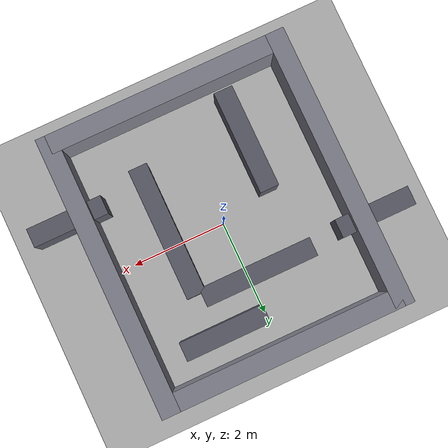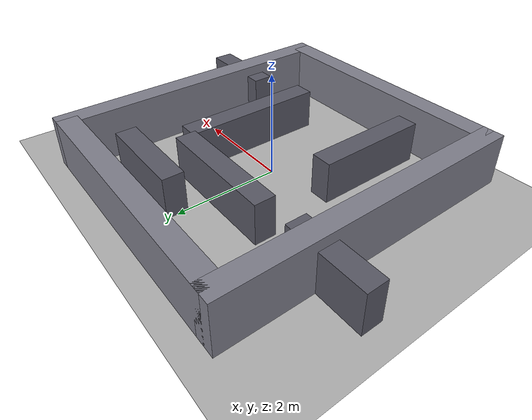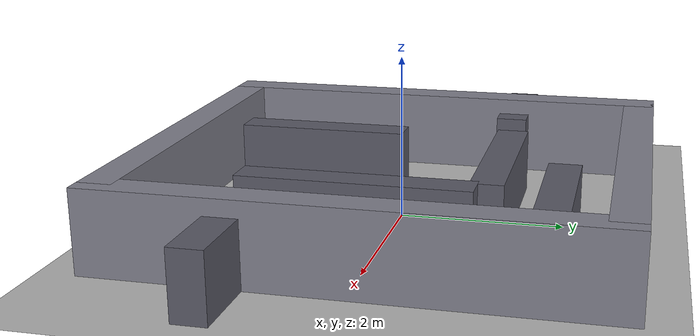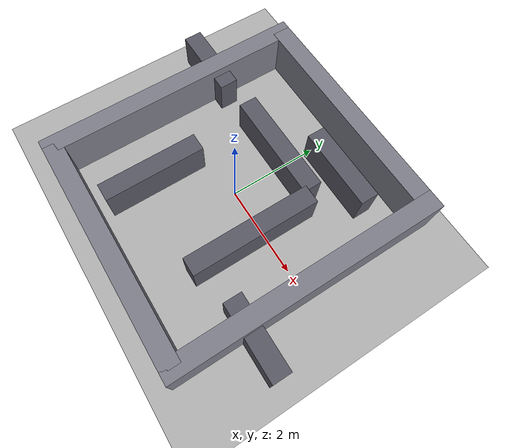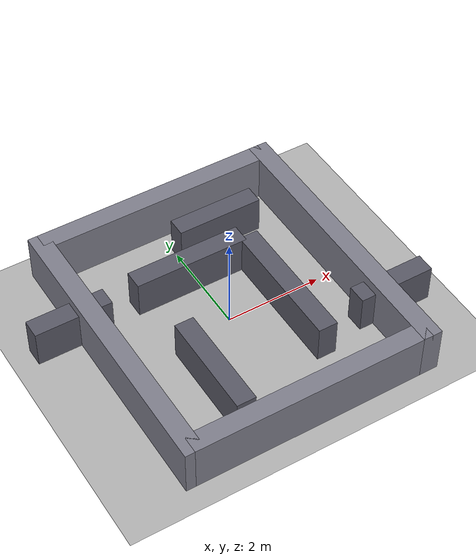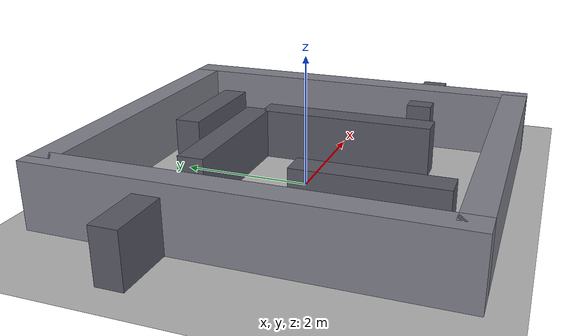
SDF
<?xml version="1.0"?>
<sdf version="1.7">
  <world name="mecanum_ode">
    <gravity>0 0 -9.81</gravity>
    <physics name="ode" type="ode">
      <max_step_size>0.001</max_step_size>
      <real_time_update_rate>1000</real_time_update_rate>
    </physics>

    <!-- Simple directional light (replacement for model://sun) -->
    <light name="sun" type="directional">
      <cast_shadows>true</cast_shadows>
      <pose>0 0 10 0 0 0</pose>
      <diffuse>1 1 1 1</diffuse>
      <specular>0.1 0.1 0.1 1</specular>
      <attenuation>
        <range>100</range>
        <linear>0.01</linear>
        <constant>1.0</constant>
        <quadratic>0.001</quadratic>
      </attenuation>
      <direction>-0.5 0.5 -1</direction>
    </light>

    <!-- Ground plane (replacement for model://ground_plane) -->
    <model name="ground_plane">
      <static>true</static>
      <link name="link">
        <collision name="collision">
          <geometry>
            <plane>
              <normal>0 0 1</normal>
              <size>200 200</size>
            </plane>
          </geometry>
          <surface>
            <contact>
              <collide_bitmask>65535</collide_bitmask>
            </contact>
          </surface>
        </collision>
        <visual name="visual">
          <cast_shadows>false</cast_shadows>
          <geometry>
            <plane>
              <normal>0 0 1</normal>
              <size>200 200</size>
            </plane>
          </geometry>
          <material>
            <ambient>0.7 0.7 0.7 1</ambient>
            <diffuse>0.7 0.7 0.7 1</diffuse>
          </material>
        </visual>
      </link>
    </model>

    <!-- Simple maze-like obstacle layout -->
    <model name="maze_outer_west">
      <static>true</static>
      <pose>-2.5 0.0 0.5 0 0 0</pose>
      <link name="link">
        <collision name="collision">
          <geometry><box><size>0.4 6.0 1.0</size></box></geometry>
        </collision>
        <visual name="visual">
          <geometry><box><size>0.4 6.0 1.0</size></box></geometry>
          <material><ambient>0.5 0.5 0.55 1</ambient><diffuse>0.5 0.5 0.55 1</diffuse></material>
        </visual>
      </link>
    </model>

    <model name="maze_outer_east">
      <static>true</static>
      <pose>2.5 0.0 0.5 0 0 0</pose>
      <link name="link">
        <collision name="collision">
          <geometry><box><size>0.4 6.0 1.0</size></box></geometry>
        </collision>
        <visual name="visual">
          <geometry><box><size>0.4 6.0 1.0</size></box></geometry>
          <material><ambient>0.5 0.5 0.55 1</ambient><diffuse>0.5 0.5 0.55 1</diffuse></material>
        </visual>
      </link>
    </model>

    <model name="maze_outer_south">
      <static>true</static>
      <pose>0.0 -2.8 0.5 0 0 0</pose>
      <link name="link">
        <collision name="collision">
          <geometry><box><size>5.0 0.4 1.0</size></box></geometry>
        </collision>
        <visual name="visual">
          <geometry><box><size>5.0 0.4 1.0</size></box></geometry>
          <material><ambient>0.5 0.5 0.55 1</ambient><diffuse>0.5 0.5 0.55 1</diffuse></material>
        </visual>
      </link>
    </model>

    <model name="maze_outer_north">
      <static>true</static>
      <pose>0.0 2.8 0.5 0 0 0</pose>
      <link name="link">
        <collision name="collision">
          <geometry><box><size>5.0 0.4 1.0</size></box></geometry>
        </collision>
        <visual name="visual">
          <geometry><box><size>5.0 0.4 1.0</size></box></geometry>
          <material><ambient>0.5 0.5 0.55 1</ambient><diffuse>0.5 0.5 0.55 1</diffuse></material>
        </visual>
      </link>
    </model>

    <model name="maze_block_1">
      <static>true</static>
      <pose>-1.1 -1.3 0.4 0 0 0</pose>
      <link name="link">
        <collision name="collision">
          <geometry><box><size>0.4 2.2 0.8</size></box></geometry>
        </collision>
        <visual name="visual">
          <geometry><box><size>0.4 2.2 0.8</size></box></geometry>
          <material><ambient>0.35 0.35 0.4 1</ambient><diffuse>0.35 0.35 0.4 1</diffuse></material>
        </visual>
      </link>
    </model>

    <model name="maze_block_2">
      <static>true</static>
      <pose>1.1 -0.3 0.4 0 0 0</pose>
      <link name="link">
        <collision name="collision">
          <geometry><box><size>0.4 2.8 0.8</size></box></geometry>
        </collision>
        <visual name="visual">
          <geometry><box><size>0.4 2.8 0.8</size></box></geometry>
          <material><ambient>0.35 0.35 0.4 1</ambient><diffuse>0.35 0.35 0.4 1</diffuse></material>
        </visual>
      </link>
    </model>

    <model name="maze_block_3">
      <static>true</static>
      <pose>-0.2 1.2 0.4 0 0 0</pose>
      <link name="link">
        <collision name="collision">
          <geometry><box><size>2.4 0.4 0.8</size></box></geometry>
        </collision>
        <visual name="visual">
          <geometry><box><size>2.4 0.4 0.8</size></box></geometry>
          <material><ambient>0.35 0.35 0.4 1</ambient><diffuse>0.35 0.35 0.4 1</diffuse></material>
        </visual>
      </link>
    </model>

    <model name="maze_block_4">
      <static>true</static>
      <pose>-2.8 1.1 0.4 0 0 0</pose>
      <link name="link">
        <collision name="collision">
          <geometry><box><size>1.6 0.4 0.8</size></box></geometry>
        </collision>
        <visual name="visual">
          <geometry><box><size>1.6 0.4 0.8</size></box></geometry>
          <material><ambient>0.35 0.35 0.4 1</ambient><diffuse>0.35 0.35 0.4 1</diffuse></material>
        </visual>
      </link>
    </model>

    <model name="maze_block_5">
      <static>true</static>
      <pose>2.8 -1.3 0.4 0 0 0</pose>
      <link name="link">
        <collision name="collision">
          <geometry><box><size>1.6 0.4 0.8</size></box></geometry>
        </collision>
        <visual name="visual">
          <geometry><box><size>1.6 0.4 0.8</size></box></geometry>
          <material><ambient>0.35 0.35 0.4 1</ambient><diffuse>0.35 0.35 0.4 1</diffuse></material>
        </visual>
      </link>
    </model>

    <model name="maze_block_6">
      <static>true</static>
      <pose>0.9 2.0 0.4 0 0 0</pose>
      <link name="link">
        <collision name="collision">
          <geometry><box><size>1.8 0.4 0.8</size></box></geometry>
        </collision>
        <visual name="visual">
          <geometry><box><size>1.8 0.4 0.8</size></box></geometry>
          <material><ambient>0.35 0.35 0.4 1</ambient><diffuse>0.35 0.35 0.4 1</diffuse></material>
        </visual>
      </link>
    </model>

    <plugin filename="gz-sim-physics-system" name="gz::sim::systems::Physics"></plugin>
    <plugin filename="gz-sim-user-commands-system" name="gz::sim::systems::UserCommands"></plugin>
    <plugin filename="gz-sim-scene-broadcaster-system" name="gz::sim::systems::SceneBroadcaster"></plugin>
    <plugin filename="gz-sim-sensors-system" name="gz::sim::systems::Sensors"></plugin>
    <plugin filename="gz-sim-imu-system" name="gz::sim::systems::Imu"></plugin>

  </world>
</sdf>
